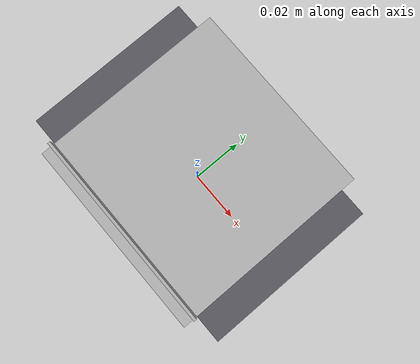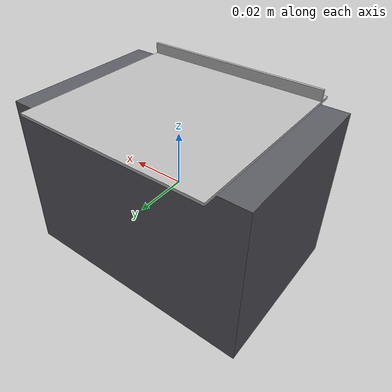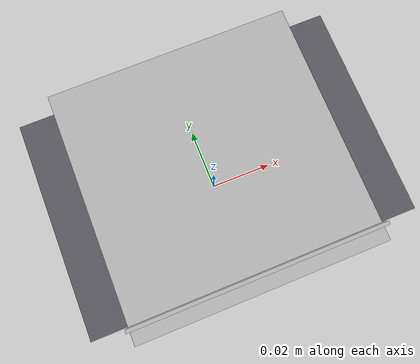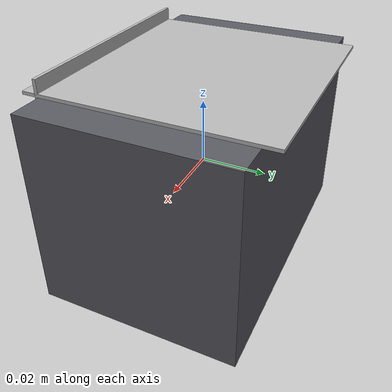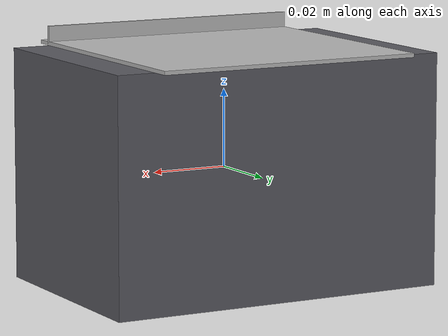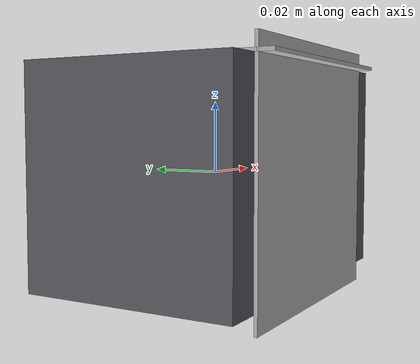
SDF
<?xml version="1.0"?>
<sdf version="1.6">
  <model name="igbt_module_aruco">
    <link name="link">
      <inertial>
        <mass>0.08</mass>
        <inertia>
          <ixx>4.8e-5</ixx><ixy>0</ixy><ixz>0</ixz>
          <iyy>7.8e-5</iyy><iyz>0</iyz><izz>7.8e-5</izz>
        </inertia>
      </inertial>
      <collision name="collision">
        <geometry><box><size>0.09 0.06 0.06</size></box></geometry>
        <surface>
          <friction><ode><mu>1.0</mu><mu2>1.0</mu2></ode></friction>
          <contact>
            <ode>
              <kp>1e6</kp>
              <kd>1.0</kd>
              <min_depth>0.001</min_depth>
              <max_vel>0.01</max_vel>
            </ode>
          </contact>
        </surface>
      </collision>
      <visual name="body_visual">
        <geometry><box><size>0.09 0.06 0.06</size></box></geometry>
        <material>
          <ambient>0.22 0.22 0.24 1</ambient>
          <diffuse>0.35 0.35 0.38 1</diffuse>
          <specular>0.18 0.18 0.18 1</specular>
        </material>
      </visual>
      <visual name="aruco_marker_front">
        <pose>0 -0.0305 0 0 0 0</pose>
        <geometry>
          <box><size>0.07 0.001 0.07</size></box>
        </geometry>
        <material>
          <script>
            <uri>model://aruco_sample/materials/scripts</uri>
            <uri>model://aruco_sample/materials/textures</uri>
            <name>ArucoSample/Marker</name>
          </script>
        </material>
      </visual>
      <visual name="aruco_marker_top">
        <pose>0 0 0.0305 0 0 0</pose>
        <geometry>
          <box><size>0.07 0.07 0.001</size></box>
        </geometry>
        <material>
          <script>
            <uri>model://aruco_sample/materials/scripts</uri>
            <uri>model://aruco_sample/materials/textures</uri>
            <name>ArucoSample/MarkerTop</name>
          </script>
        </material>
      </visual>
    </link>
  </model>
</sdf>
